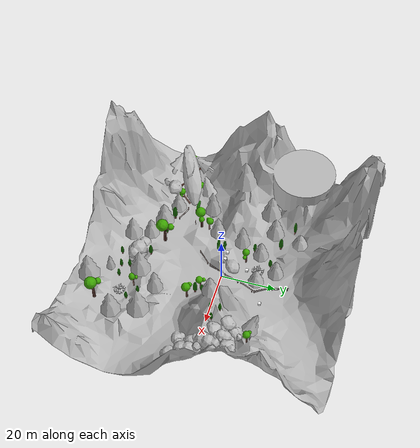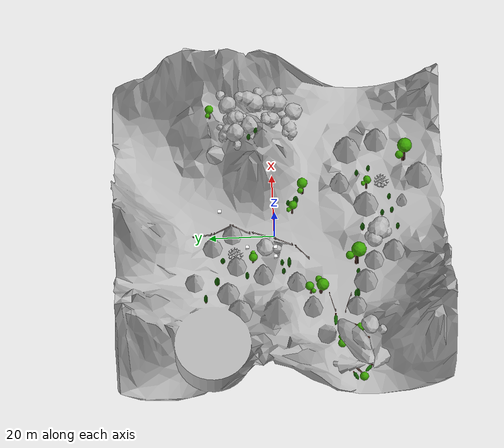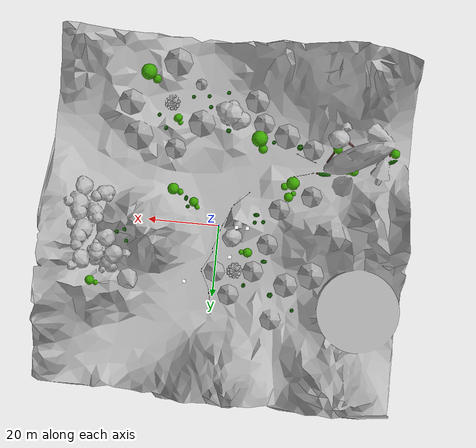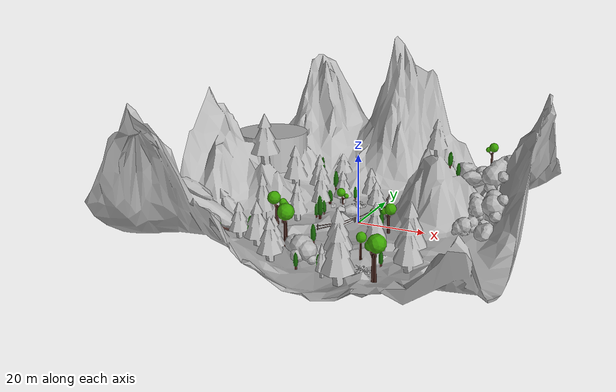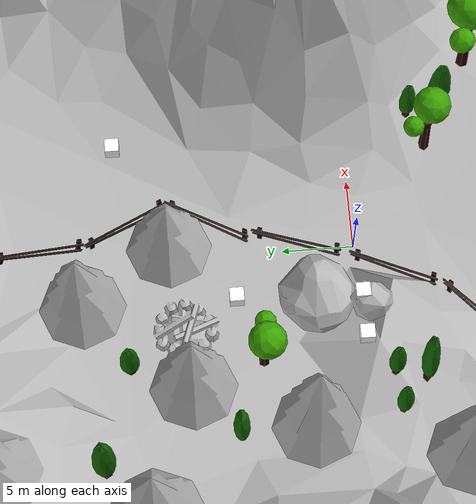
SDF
<sdf version="1.9">
 <world name="world_test_tags">
  <plugin name="ignition::gazebo::systems::Physics" filename="ignition-gazebo-physics-system"/>
  <plugin name="ignition::gazebo::systems::UserCommands" filename="ignition-gazebo-user-commands-system"/>
  <plugin name="ignition::gazebo::systems::SceneBroadcaster" filename="ignition-gazebo-scene-broadcaster-system"/>
  <plugin name="ignition::gazebo::systems::Contact" filename="ignition-gazebo-contact-system"/>
  <plugin name="ignition::gazebo::systems::ParticleEmitter2" filename="ignition-gazebo-particle-emitter2-system"/>
  <plugin name="ignition::gazebo::systems::Sensors" filename="ignition-gazebo-sensors-system">
   <render_engine>ogre2</render_engine>
  </plugin>
  <plugin name="ignition::gazebo::systems::Imu" filename="ignition-gazebo-imu-system"/>
  <plugin name="ignition::gazebo::systems::NavSat" filename="ignition-gazebo-navsat-system"/>
  <gravity>0 0 -9.81</gravity>
  <magnetic_field>6e-06 2.3e-05 -4.2e-05</magnetic_field>
  <atmosphere type="adiabatic"/>
  <physics name="default_physics" type="ignored">
   <max_step_size>0.01</max_step_size>
   <real_time_factor>1</real_time_factor>
   <real_time_update_rate>100</real_time_update_rate>
  </physics>
  <scene>
   <ambient>1 1 1 1</ambient>
   <background>0.6 0.8 1 1</background>
   <shadows>false</shadows>
   <grid>false</grid>
  </scene>
  <spherical_coordinates>
   <latitude_deg>0</latitude_deg>
   <longitude_deg>0</longitude_deg>
   <elevation>10</elevation>
   <heading_deg>0</heading_deg>
   <surface_model>EARTH_WGS84</surface_model>
  </spherical_coordinates>
  <light name="sun" type="directional">
   <pose>0 0 100 0 -0 0</pose>
   <cast_shadows>false</cast_shadows>
   <intensity>5</intensity>
   <direction>-0.5 0.1 -0.9</direction>
   <diffuse>0.8 0.8 0.8 1</diffuse>
   <specular>0.8 0.8 0.8 1</specular>
   <attenuation><range>10</range><linear>1</linear><constant>1</constant><quadratic>0</quadratic></attenuation>
   <spot><inner_angle>0</inner_angle><outer_angle>0</outer_angle><falloff>0</falloff></spot>
  </light>
  <include><uri>model://mountain_forest_environment</uri><name>mountain_forest</name></include>
  <include><uri>model://tags/tag_0</uri><name>test_tag_drone1</name><pose>-8 0 4 0 0 0</pose></include>
  <include><uri>model://tags/tag_1</uri><name>test_tag_drone2</name><pose>-5 0 4 0 0 0</pose></include>
  <include><uri>model://tags/tag_0</uri><name>tag_00</name><pose>-3.87 8.47 1.87 0 0 0</pose></include>
  <include><uri>model://tags/tag_0</uri><name>tag_01</name><pose>11.51 -23.4 2 0 0 0</pose></include>
  <include><uri>model://tags/tag_1</uri><name>tag_1</name><pose>22.93 5.7 13.5 0 0 0</pose></include>
  <include><uri>model://tags/tag_2</uri><name>tag_2</name><pose>8.31 16.45 1.39 0 0 0</pose></include>
 </world>
</sdf>

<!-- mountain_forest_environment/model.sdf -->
<sdf version="1.7">
<model name="mountain_forest_environment">
    <static>true</static>
    <link name="mountain_forest_environment">
        <pose>0 0 0 0 0 0</pose>
        <collision name="collision">
            <geometry>
                <mesh>
                    <uri>model://mountain_forest_environment/meshes/mountain_forest_environment.dae</uri>
                </mesh>
            </geometry>
        </collision>
        <visual name="visual">
            <geometry>
                <mesh>
                    <uri>model://mountain_forest_environment/meshes/mountain_forest_environment.dae</uri>
                </mesh>
            </geometry>
        </visual>
    </link>
</model>
</sdf>

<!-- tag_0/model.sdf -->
<sdf version="1.9">
<model name="scenario_0">
    <static>true</static>
    <link name="link">
        <collision name="collision">
            <geometry>
                <box>
                    <size> 1 1 1 </size> <!-- Change this to edit AR Tag Cube Size -->
                </box>
            </geometry>
        </collision>
        <visual name="visual">
            <cast_shadows>false</cast_shadows>
            <geometry>
                <box>
                    <size> 1 1 1 </size> <!-- Change this to edit AR Tag Cube Size -->
                </box>
            </geometry>
            <material>
                <diffuse>1.0 1.0 1.0 1</diffuse>
                <pbr>
                    <metal>
                        <albedo_map>
                            model://tags/materials/texture/april_36h11-0.png
                        </albedo_map>
                    </metal>
                </pbr>
                <double_sided>true</double_sided>
            </material>
        </visual>
    </link>
</model>
</sdf>

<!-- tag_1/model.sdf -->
<sdf version="1.9">
<model name="scenario_0">
    <static>true</static>
    <link name="link">
        <collision name="collision">
            <geometry>
                <box>
                    <size> 1 1 1 </size> <!-- Change this to edit AR Tag Cube Size -->
                </box>
            </geometry>
        </collision>
        <visual name="visual">
            <cast_shadows>false</cast_shadows>
            <geometry>
                <box>
                    <size> 1 1 1 </size> <!-- Change this to edit AR Tag Cube Size -->
                </box>
            </geometry>
            <material>
                <diffuse>1.0 1.0 1.0 1</diffuse>
                <pbr>
                    <metal>
                        <albedo_map>
                            model://tags/materials/texture/april_36h11-1.png
                        </albedo_map>
                    </metal>
                </pbr>
                <double_sided>true</double_sided>
            </material>
        </visual>
    </link>
</model>
</sdf>

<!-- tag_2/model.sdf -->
<sdf version="1.9">
<model name="scenario_0">
    <static>true</static>
    <link name="link">
        <collision name="collision">
            <geometry>
                <box>
                    <size> 1 1 1 </size> <!-- Change this to edit AR Tag Cube Size -->
                </box>
            </geometry>
        </collision>
        <visual name="visual">
            <cast_shadows>false</cast_shadows>
            <geometry>
                <box>
                    <size> 1 1 1 </size> <!-- Change this to edit AR Tag Cube Size -->
                </box>
            </geometry>
            <material>
                <diffuse>1.0 1.0 1.0 1</diffuse>
                <pbr>
                    <metal>
                        <albedo_map>
                            model://tags/materials/texture/april_36h11-2.png
                        </albedo_map>
                    </metal>
                </pbr>
                <double_sided>true</double_sided>
            </material>
        </visual>
    </link>
</model>
</sdf>
